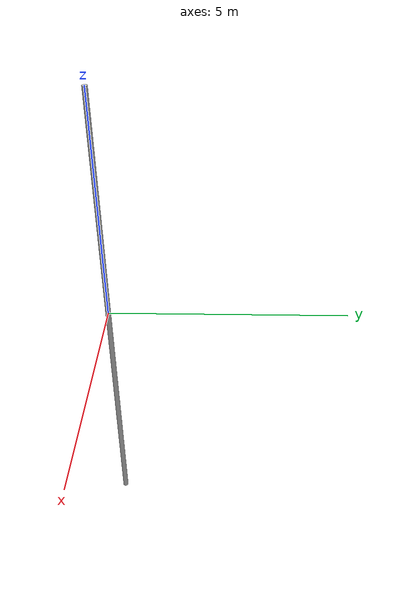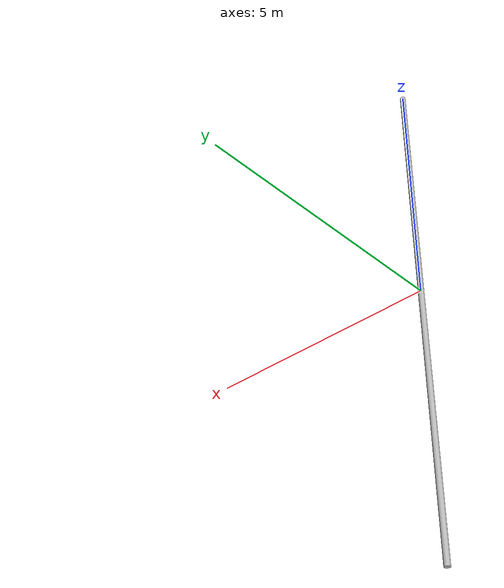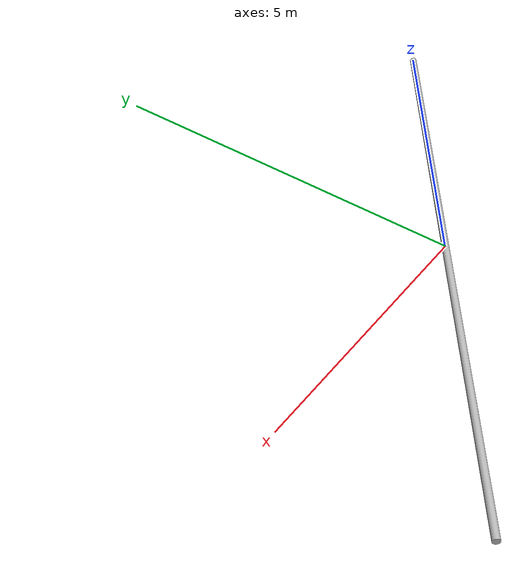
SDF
<?xml version="1.0" ?>
<sdf version="1.5">
  <model name="beer">
    <link name="link">
      <pose>0 0 0 0 0 0</pose>
      <inertial>
        <mass>0.390</mass>
        <inertia>
          <ixx>0.00058</ixx>
          <ixy>0</ixy>
          <ixz>0</ixz>
          <iyy>0.00058</iyy>
          <iyz>0</iyz>
          <izz>0.00019</izz>
        </inertia>
      </inertial>
      <collision name="collision">
        <geometry>
          <cylinder>
            <radius>0.055000</radius>
            <length>10</length>
          </cylinder>
        </geometry>
      </collision>
      <visual name="visual">
        <geometry>
          <cylinder>
            <radius>0.055000</radius>
            <length>10</length>
          </cylinder>
        </geometry>
        <material>
          <script>
            <uri>model://Armada_Cylinder/materials/scripts</uri>
            <uri>model://Armada_Cylinder/materials/textures</uri>
            <name>Beer/Diffuse</name>
          </script>
        </material>
      </visual>
    </link>
  </model>
</sdf>
